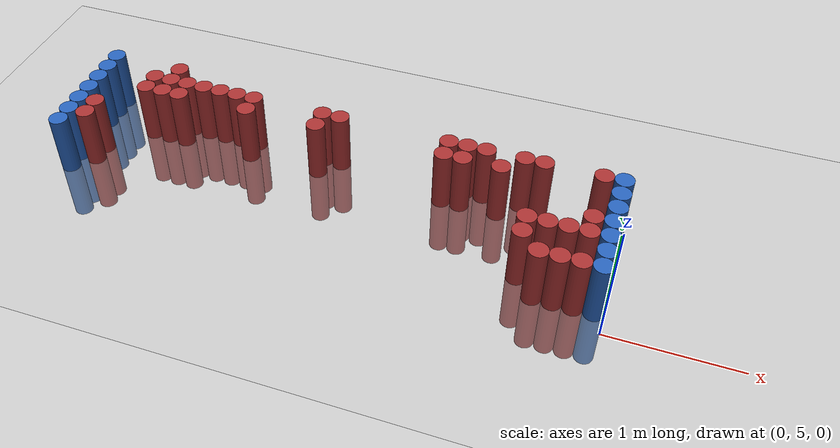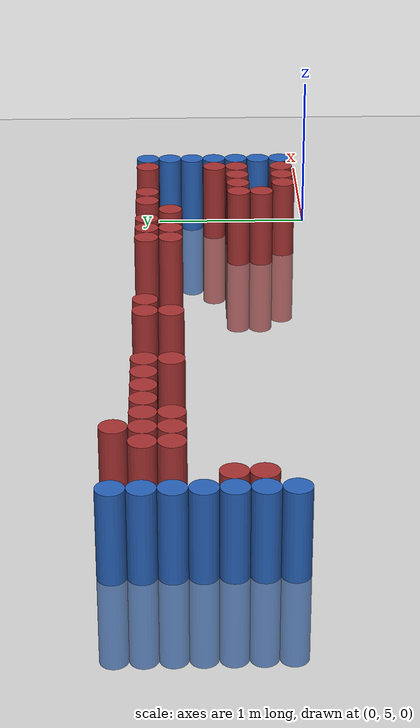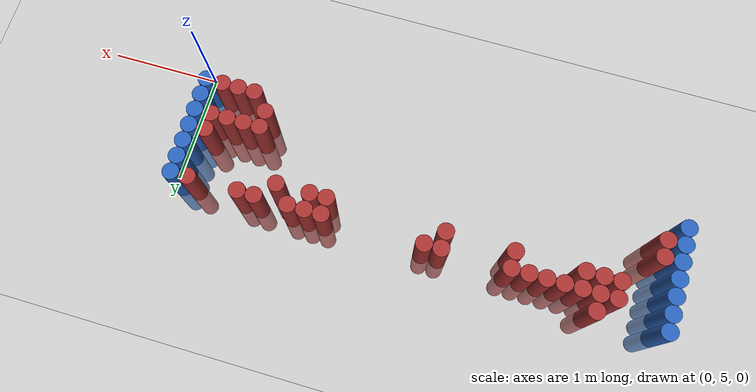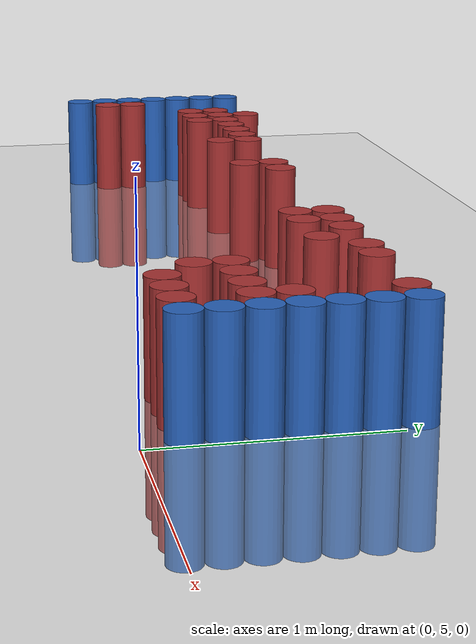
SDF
<sdf version="1.6">
 <world name="default">
  <model name="ground_plane">
   <static>1</static>
   <link name="link">
    <collision name="collision">
     <geometry><plane><normal>0 0 1</normal><size>100 100</size></plane></geometry>
     <surface><friction><ode><mu>100</mu><mu2>50</mu2></ode></friction></surface>
    </collision>
    <visual name="visual">
     <cast_shadows>0</cast_shadows>
     <geometry><plane><normal>0 0 1</normal><size>100 100</size></plane></geometry>
     <material>
      <script><uri>file://media/materials/scripts/gazebo.material</uri><name>Gazebo/Grey</name></script>
     </material>
    </visual>
   </link>
  </model>
  <model name="unit_cylinder_97">
   <static>1</static>
   <pose>-4.425000 5.325000 0.000000 0.000000 0.000000 0.000000</pose>
   <link name="link">
    <inertial>
     <mass>1</mass>
     <inertia><ixx>0.145833</ixx><ixy>0</ixy><ixz>0</ixz><iyy>0.145833</iyy><iyz>0</iyz><izz>0.125</izz></inertia>
    </inertial>
    <collision name="collision">
     <geometry><cylinder><radius>0.075000</radius><length>1</length></cylinder></geometry>
    </collision>
    <visual name="visual">
     <geometry><cylinder><radius>0.075000</radius><length>1</length></cylinder></geometry>
     <material>
      <ambient>0.152000 0.379000 0.720000 1</ambient>
      <diffuse>0.152000 0.379000 0.720000 1</diffuse>
     </material>
     <material>
      <script><name>Gazebo/Grey</name><uri>file://media/materials/scripts/gazebo.material</uri></script>
     </material>
    </visual>
   </link>
  </model>
  <model name="unit_cylinder_98">
   <static>1</static>
   <pose>-4.425000 5.475000 0.000000 0.000000 0.000000 0.000000</pose>
   <link name="link">
    <inertial>
     <mass>1</mass>
     <inertia><ixx>0.145833</ixx><ixy>0</ixy><ixz>0</ixz><iyy>0.145833</iyy><iyz>0</iyz><izz>0.125</izz></inertia>
    </inertial>
    <collision name="collision">
     <geometry><cylinder><radius>0.075000</radius><length>1</length></cylinder></geometry>
    </collision>
    <visual name="visual">
     <geometry><cylinder><radius>0.075000</radius><length>1</length></cylinder></geometry>
     <material>
      <ambient>0.152000 0.379000 0.720000 1</ambient>
      <diffuse>0.152000 0.379000 0.720000 1</diffuse>
     </material>
     <material>
      <script><name>Gazebo/Grey</name><uri>file://media/materials/scripts/gazebo.material</uri></script>
     </material>
    </visual>
   </link>
  </model>
  <model name="unit_cylinder_99">
   <static>1</static>
   <pose>-4.425000 5.625000 0.000000 0.000000 0.000000 0.000000</pose>
   <link name="link">
    <inertial>
     <mass>1</mass>
     <inertia><ixx>0.145833</ixx><ixy>0</ixy><ixz>0</ixz><iyy>0.145833</iyy><iyz>0</iyz><izz>0.125</izz></inertia>
    </inertial>
    <collision name="collision">
     <geometry><cylinder><radius>0.075000</radius><length>1</length></cylinder></geometry>
    </collision>
    <visual name="visual">
     <geometry><cylinder><radius>0.075000</radius><length>1</length></cylinder></geometry>
     <material>
      <ambient>0.152000 0.379000 0.720000 1</ambient>
      <diffuse>0.152000 0.379000 0.720000 1</diffuse>
     </material>
     <material>
      <script><name>Gazebo/Grey</name><uri>file://media/materials/scripts/gazebo.material</uri></script>
     </material>
    </visual>
   </link>
  </model>
  <model name="unit_cylinder_100">
   <static>1</static>
   <pose>-4.425000 5.775000 0.000000 0.000000 0.000000 0.000000</pose>
   <link name="link">
    <inertial>
     <mass>1</mass>
     <inertia><ixx>0.145833</ixx><ixy>0</ixy><ixz>0</ixz><iyy>0.145833</iyy><iyz>0</iyz><izz>0.125</izz></inertia>
    </inertial>
    <collision name="collision">
     <geometry><cylinder><radius>0.075000</radius><length>1</length></cylinder></geometry>
    </collision>
    <visual name="visual">
     <geometry><cylinder><radius>0.075000</radius><length>1</length></cylinder></geometry>
     <material>
      <ambient>0.152000 0.379000 0.720000 1</ambient>
      <diffuse>0.152000 0.379000 0.720000 1</diffuse>
     </material>
     <material>
      <script><name>Gazebo/Grey</name><uri>file://media/materials/scripts/gazebo.material</uri></script>
     </material>
    </visual>
   </link>
  </model>
  <model name="unit_cylinder_101">
   <static>1</static>
   <pose>-4.425000 5.925000 0.000000 0.000000 0.000000 0.000000</pose>
   <link name="link">
    <inertial>
     <mass>1</mass>
     <inertia><ixx>0.145833</ixx><ixy>0</ixy><ixz>0</ixz><iyy>0.145833</iyy><iyz>0</iyz><izz>0.125</izz></inertia>
    </inertial>
    <collision name="collision">
     <geometry><cylinder><radius>0.075000</radius><length>1</length></cylinder></geometry>
    </collision>
    <visual name="visual">
     <geometry><cylinder><radius>0.075000</radius><length>1</length></cylinder></geometry>
     <material>
      <ambient>0.152000 0.379000 0.720000 1</ambient>
      <diffuse>0.152000 0.379000 0.720000 1</diffuse>
     </material>
     <material>
      <script><name>Gazebo/Grey</name><uri>file://media/materials/scripts/gazebo.material</uri></script>
     </material>
    </visual>
   </link>
  </model>
  <model name="unit_cylinder_102">
   <static>1</static>
   <pose>-4.425000 6.075000 0.000000 0.000000 0.000000 0.000000</pose>
   <link name="link">
    <inertial>
     <mass>1</mass>
     <inertia><ixx>0.145833</ixx><ixy>0</ixy><ixz>0</ixz><iyy>0.145833</iyy><iyz>0</iyz><izz>0.125</izz></inertia>
    </inertial>
    <collision name="collision">
     <geometry><cylinder><radius>0.075000</radius><length>1</length></cylinder></geometry>
    </collision>
    <visual name="visual">
     <geometry><cylinder><radius>0.075000</radius><length>1</length></cylinder></geometry>
     <material>
      <ambient>0.152000 0.379000 0.720000 1</ambient>
      <diffuse>0.152000 0.379000 0.720000 1</diffuse>
     </material>
     <material>
      <script><name>Gazebo/Grey</name><uri>file://media/materials/scripts/gazebo.material</uri></script>
     </material>
    </visual>
   </link>
  </model>
  <model name="unit_cylinder_103">
   <static>1</static>
   <pose>-4.425000 6.225000 0.000000 0.000000 0.000000 0.000000</pose>
   <link name="link">
    <inertial>
     <mass>1</mass>
     <inertia><ixx>0.145833</ixx><ixy>0</ixy><ixz>0</ixz><iyy>0.145833</iyy><iyz>0</iyz><izz>0.125</izz></inertia>
    </inertial>
    <collision name="collision">
     <geometry><cylinder><radius>0.075000</radius><length>1</length></cylinder></geometry>
    </collision>
    <visual name="visual">
     <geometry><cylinder><radius>0.075000</radius><length>1</length></cylinder></geometry>
     <material>
      <ambient>0.152000 0.379000 0.720000 1</ambient>
      <diffuse>0.152000 0.379000 0.720000 1</diffuse>
     </material>
     <material>
      <script><name>Gazebo/Grey</name><uri>file://media/materials/scripts/gazebo.material</uri></script>
     </material>
    </visual>
   </link>
  </model>
  <model name="unit_cylinder_126">
   <static>1</static>
   <pose>-4.275000 5.475000 0.000000 0.000000 0.000000 0.000000</pose>
   <link name="link">
    <inertial>
     <mass>1</mass>
     <inertia><ixx>0.145833</ixx><ixy>0</ixy><ixz>0</ixz><iyy>0.145833</iyy><iyz>0</iyz><izz>0.125</izz></inertia>
    </inertial>
    <collision name="collision">
     <geometry><cylinder><radius>0.075000</radius><length>1</length></cylinder></geometry>
    </collision>
    <visual name="visual">
     <geometry><cylinder><radius>0.075000</radius><length>1</length></cylinder></geometry>
     <material>
      <ambient>0.648000 0.192000 0.192000 1</ambient>
      <diffuse>0.648000 0.192000 0.192000 1</diffuse>
     </material>
     <material>
      <script><name>Gazebo/Grey</name><uri>file://media/materials/scripts/gazebo.material</uri></script>
     </material>
    </visual>
   </link>
  </model>
  <model name="unit_cylinder_127">
   <static>1</static>
   <pose>-4.275000 5.625000 0.000000 0.000000 0.000000 0.000000</pose>
   <link name="link">
    <inertial>
     <mass>1</mass>
     <inertia><ixx>0.145833</ixx><ixy>0</ixy><ixz>0</ixz><iyy>0.145833</iyy><iyz>0</iyz><izz>0.125</izz></inertia>
    </inertial>
    <collision name="collision">
     <geometry><cylinder><radius>0.075000</radius><length>1</length></cylinder></geometry>
    </collision>
    <visual name="visual">
     <geometry><cylinder><radius>0.075000</radius><length>1</length></cylinder></geometry>
     <material>
      <ambient>0.648000 0.192000 0.192000 1</ambient>
      <diffuse>0.648000 0.192000 0.192000 1</diffuse>
     </material>
     <material>
      <script><name>Gazebo/Grey</name><uri>file://media/materials/scripts/gazebo.material</uri></script>
     </material>
    </visual>
   </link>
  </model>
  <model name="unit_cylinder_141">
   <static>1</static>
   <pose>-3.975000 5.925000 0.000000 0.000000 0.000000 0.000000</pose>
   <link name="link">
    <inertial>
     <mass>1</mass>
     <inertia><ixx>0.145833</ixx><ixy>0</ixy><ixz>0</ixz><iyy>0.145833</iyy><iyz>0</iyz><izz>0.125</izz></inertia>
    </inertial>
    <collision name="collision">
     <geometry><cylinder><radius>0.075000</radius><length>1</length></cylinder></geometry>
    </collision>
    <visual name="visual">
     <geometry><cylinder><radius>0.075000</radius><length>1</length></cylinder></geometry>
     <material>
      <ambient>0.648000 0.192000 0.192000 1</ambient>
      <diffuse>0.648000 0.192000 0.192000 1</diffuse>
     </material>
     <material>
      <script><name>Gazebo/Grey</name><uri>file://media/materials/scripts/gazebo.material</uri></script>
     </material>
    </visual>
   </link>
  </model>
  <model name="unit_cylinder_142">
   <static>1</static>
   <pose>-3.975000 6.075000 0.000000 0.000000 0.000000 0.000000</pose>
   <link name="link">
    <inertial>
     <mass>1</mass>
     <inertia><ixx>0.145833</ixx><ixy>0</ixy><ixz>0</ixz><iyy>0.145833</iyy><iyz>0</iyz><izz>0.125</izz></inertia>
    </inertial>
    <collision name="collision">
     <geometry><cylinder><radius>0.075000</radius><length>1</length></cylinder></geometry>
    </collision>
    <visual name="visual">
     <geometry><cylinder><radius>0.075000</radius><length>1</length></cylinder></geometry>
     <material>
      <ambient>0.648000 0.192000 0.192000 1</ambient>
      <diffuse>0.648000 0.192000 0.192000 1</diffuse>
     </material>
     <material>
      <script><name>Gazebo/Grey</name><uri>file://media/materials/scripts/gazebo.material</uri></script>
     </material>
    </visual>
   </link>
  </model>
  <model name="unit_cylinder_152">
   <static>1</static>
   <pose>-3.825000 5.925000 0.000000 0.000000 0.000000 0.000000</pose>
   <link name="link">
    <inertial>
     <mass>1</mass>
     <inertia><ixx>0.145833</ixx><ixy>0</ixy><ixz>0</ixz><iyy>0.145833</iyy><iyz>0</iyz><izz>0.125</izz></inertia>
    </inertial>
    <collision name="collision">
     <geometry><cylinder><radius>0.075000</radius><length>1</length></cylinder></geometry>
    </collision>
    <visual name="visual">
     <geometry><cylinder><radius>0.075000</radius><length>1</length></cylinder></geometry>
     <material>
      <ambient>0.648000 0.192000 0.192000 1</ambient>
      <diffuse>0.648000 0.192000 0.192000 1</diffuse>
     </material>
     <material>
      <script><name>Gazebo/Grey</name><uri>file://media/materials/scripts/gazebo.material</uri></script>
     </material>
    </visual>
   </link>
  </model>
  <model name="unit_cylinder_153">
   <static>1</static>
   <pose>-3.825000 6.075000 0.000000 0.000000 0.000000 0.000000</pose>
   <link name="link">
    <inertial>
     <mass>1</mass>
     <inertia><ixx>0.145833</ixx><ixy>0</ixy><ixz>0</ixz><iyy>0.145833</iyy><iyz>0</iyz><izz>0.125</izz></inertia>
    </inertial>
    <collision name="collision">
     <geometry><cylinder><radius>0.075000</radius><length>1</length></cylinder></geometry>
    </collision>
    <visual name="visual">
     <geometry><cylinder><radius>0.075000</radius><length>1</length></cylinder></geometry>
     <material>
      <ambient>0.648000 0.192000 0.192000 1</ambient>
      <diffuse>0.648000 0.192000 0.192000 1</diffuse>
     </material>
     <material>
      <script><name>Gazebo/Grey</name><uri>file://media/materials/scripts/gazebo.material</uri></script>
     </material>
    </visual>
   </link>
  </model>
  <model name="unit_cylinder_154">
   <static>1</static>
   <pose>-3.825000 6.225000 0.000000 0.000000 0.000000 0.000000</pose>
   <link name="link">
    <inertial>
     <mass>1</mass>
     <inertia><ixx>0.145833</ixx><ixy>0</ixy><ixz>0</ixz><iyy>0.145833</iyy><iyz>0</iyz><izz>0.125</izz></inertia>
    </inertial>
    <collision name="collision">
     <geometry><cylinder><radius>0.075000</radius><length>1</length></cylinder></geometry>
    </collision>
    <visual name="visual">
     <geometry><cylinder><radius>0.075000</radius><length>1</length></cylinder></geometry>
     <material>
      <ambient>0.648000 0.192000 0.192000 1</ambient>
      <diffuse>0.648000 0.192000 0.192000 1</diffuse>
     </material>
     <material>
      <script><name>Gazebo/Grey</name><uri>file://media/materials/scripts/gazebo.material</uri></script>
     </material>
    </visual>
   </link>
  </model>
  <model name="unit_cylinder_165">
   <static>1</static>
   <pose>-3.675000 5.925000 0.000000 0.000000 0.000000 0.000000</pose>
   <link name="link">
    <inertial>
     <mass>1</mass>
     <inertia><ixx>0.145833</ixx><ixy>0</ixy><ixz>0</ixz><iyy>0.145833</iyy><iyz>0</iyz><izz>0.125</izz></inertia>
    </inertial>
    <collision name="collision">
     <geometry><cylinder><radius>0.075000</radius><length>1</length></cylinder></geometry>
    </collision>
    <visual name="visual">
     <geometry><cylinder><radius>0.075000</radius><length>1</length></cylinder></geometry>
     <material>
      <ambient>0.648000 0.192000 0.192000 1</ambient>
      <diffuse>0.648000 0.192000 0.192000 1</diffuse>
     </material>
     <material>
      <script><name>Gazebo/Grey</name><uri>file://media/materials/scripts/gazebo.material</uri></script>
     </material>
    </visual>
   </link>
  </model>
  <model name="unit_cylinder_166">
   <static>1</static>
   <pose>-3.675000 6.075000 0.000000 0.000000 0.000000 0.000000</pose>
   <link name="link">
    <inertial>
     <mass>1</mass>
     <inertia><ixx>0.145833</ixx><ixy>0</ixy><ixz>0</ixz><iyy>0.145833</iyy><iyz>0</iyz><izz>0.125</izz></inertia>
    </inertial>
    <collision name="collision">
     <geometry><cylinder><radius>0.075000</radius><length>1</length></cylinder></geometry>
    </collision>
    <visual name="visual">
     <geometry><cylinder><radius>0.075000</radius><length>1</length></cylinder></geometry>
     <material>
      <ambient>0.648000 0.192000 0.192000 1</ambient>
      <diffuse>0.648000 0.192000 0.192000 1</diffuse>
     </material>
     <material>
      <script><name>Gazebo/Grey</name><uri>file://media/materials/scripts/gazebo.material</uri></script>
     </material>
    </visual>
   </link>
  </model>
  <model name="unit_cylinder_173">
   <static>1</static>
   <pose>-3.525000 6.075000 0.000000 0.000000 0.000000 0.000000</pose>
   <link name="link">
    <inertial>
     <mass>1</mass>
     <inertia><ixx>0.145833</ixx><ixy>0</ixy><ixz>0</ixz><iyy>0.145833</iyy><iyz>0</iyz><izz>0.125</izz></inertia>
    </inertial>
    <collision name="collision">
     <geometry><cylinder><radius>0.075000</radius><length>1</length></cylinder></geometry>
    </collision>
    <visual name="visual">
     <geometry><cylinder><radius>0.075000</radius><length>1</length></cylinder></geometry>
     <material>
      <ambient>0.648000 0.192000 0.192000 1</ambient>
      <diffuse>0.648000 0.192000 0.192000 1</diffuse>
     </material>
     <material>
      <script><name>Gazebo/Grey</name><uri>file://media/materials/scripts/gazebo.material</uri></script>
     </material>
    </visual>
   </link>
  </model>
  <model name="unit_cylinder_178">
   <static>1</static>
   <pose>-3.375000 6.075000 0.000000 0.000000 0.000000 0.000000</pose>
   <link name="link">
    <inertial>
     <mass>1</mass>
     <inertia><ixx>0.145833</ixx><ixy>0</ixy><ixz>0</ixz><iyy>0.145833</iyy><iyz>0</iyz><izz>0.125</izz></inertia>
    </inertial>
    <collision name="collision">
     <geometry><cylinder><radius>0.075000</radius><length>1</length></cylinder></geometry>
    </collision>
    <visual name="visual">
     <geometry><cylinder><radius>0.075000</radius><length>1</length></cylinder></geometry>
     <material>
      <ambient>0.648000 0.192000 0.192000 1</ambient>
      <diffuse>0.648000 0.192000 0.192000 1</diffuse>
     </material>
     <material>
      <script><name>Gazebo/Grey</name><uri>file://media/materials/scripts/gazebo.material</uri></script>
     </material>
    </visual>
   </link>
  </model>
  <model name="unit_cylinder_183">
   <static>1</static>
   <pose>-3.225000 6.075000 0.000000 0.000000 0.000000 0.000000</pose>
   <link name="link">
    <inertial>
     <mass>1</mass>
     <inertia><ixx>0.145833</ixx><ixy>0</ixy><ixz>0</ixz><iyy>0.145833</iyy><iyz>0</iyz><izz>0.125</izz></inertia>
    </inertial>
    <collision name="collision">
     <geometry><cylinder><radius>0.075000</radius><length>1</length></cylinder></geometry>
    </collision>
    <visual name="visual">
     <geometry><cylinder><radius>0.075000</radius><length>1</length></cylinder></geometry>
     <material>
      <ambient>0.648000 0.192000 0.192000 1</ambient>
      <diffuse>0.648000 0.192000 0.192000 1</diffuse>
     </material>
     <material>
      <script><name>Gazebo/Grey</name><uri>file://media/materials/scripts/gazebo.material</uri></script>
     </material>
    </visual>
   </link>
  </model>
  <model name="unit_cylinder_186">
   <static>1</static>
   <pose>-3.075000 5.925000 0.000000 0.000000 0.000000 0.000000</pose>
   <link name="link">
    <inertial>
     <mass>1</mass>
     <inertia><ixx>0.145833</ixx><ixy>0</ixy><ixz>0</ixz><iyy>0.145833</iyy><iyz>0</iyz><izz>0.125</izz></inertia>
    </inertial>
    <collision name="collision">
     <geometry><cylinder><radius>0.075000</radius><length>1</length></cylinder></geometry>
    </collision>
    <visual name="visual">
     <geometry><cylinder><radius>0.075000</radius><length>1</length></cylinder></geometry>
     <material>
      <ambient>0.648000 0.192000 0.192000 1</ambient>
      <diffuse>0.648000 0.192000 0.192000 1</diffuse>
     </material>
     <material>
      <script><name>Gazebo/Grey</name><uri>file://media/materials/scripts/gazebo.material</uri></script>
     </material>
    </visual>
   </link>
  </model>
  <model name="unit_cylinder_187">
   <static>1</static>
   <pose>-3.075000 6.075000 0.000000 0.000000 0.000000 0.000000</pose>
   <link name="link">
    <inertial>
     <mass>1</mass>
     <inertia><ixx>0.145833</ixx><ixy>0</ixy><ixz>0</ixz><iyy>0.145833</iyy><iyz>0</iyz><izz>0.125</izz></inertia>
    </inertial>
    <collision name="collision">
     <geometry><cylinder><radius>0.075000</radius><length>1</length></cylinder></geometry>
    </collision>
    <visual name="visual">
     <geometry><cylinder><radius>0.075000</radius><length>1</length></cylinder></geometry>
     <material>
      <ambient>0.648000 0.192000 0.192000 1</ambient>
      <diffuse>0.648000 0.192000 0.192000 1</diffuse>
     </material>
     <material>
      <script><name>Gazebo/Grey</name><uri>file://media/materials/scripts/gazebo.material</uri></script>
     </material>
    </visual>
   </link>
  </model>
  <model name="unit_cylinder_213">
   <static>1</static>
   <pose>-2.475000 5.925000 0.000000 0.000000 0.000000 0.000000</pose>
   <link name="link">
    <inertial>
     <mass>1</mass>
     <inertia><ixx>0.145833</ixx><ixy>0</ixy><ixz>0</ixz><iyy>0.145833</iyy><iyz>0</iyz><izz>0.125</izz></inertia>
    </inertial>
    <collision name="collision">
     <geometry><cylinder><radius>0.075000</radius><length>1</length></cylinder></geometry>
    </collision>
    <visual name="visual">
     <geometry><cylinder><radius>0.075000</radius><length>1</length></cylinder></geometry>
     <material>
      <ambient>0.648000 0.192000 0.192000 1</ambient>
      <diffuse>0.648000 0.192000 0.192000 1</diffuse>
     </material>
     <material>
      <script><name>Gazebo/Grey</name><uri>file://media/materials/scripts/gazebo.material</uri></script>
     </material>
    </visual>
   </link>
  </model>
  <model name="unit_cylinder_214">
   <static>1</static>
   <pose>-2.475000 6.075000 0.000000 0.000000 0.000000 0.000000</pose>
   <link name="link">
    <inertial>
     <mass>1</mass>
     <inertia><ixx>0.145833</ixx><ixy>0</ixy><ixz>0</ixz><iyy>0.145833</iyy><iyz>0</iyz><izz>0.125</izz></inertia>
    </inertial>
    <collision name="collision">
     <geometry><cylinder><radius>0.075000</radius><length>1</length></cylinder></geometry>
    </collision>
    <visual name="visual">
     <geometry><cylinder><radius>0.075000</radius><length>1</length></cylinder></geometry>
     <material>
      <ambient>0.648000 0.192000 0.192000 1</ambient>
      <diffuse>0.648000 0.192000 0.192000 1</diffuse>
     </material>
     <material>
      <script><name>Gazebo/Grey</name><uri>file://media/materials/scripts/gazebo.material</uri></script>
     </material>
    </visual>
   </link>
  </model>
  <model name="unit_cylinder_216">
   <static>1</static>
   <pose>-2.325000 6.075000 0.000000 0.000000 0.000000 0.000000</pose>
   <link name="link">
    <inertial>
     <mass>1</mass>
     <inertia><ixx>0.145833</ixx><ixy>0</ixy><ixz>0</ixz><iyy>0.145833</iyy><iyz>0</iyz><izz>0.125</izz></inertia>
    </inertial>
    <collision name="collision">
     <geometry><cylinder><radius>0.075000</radius><length>1</length></cylinder></geometry>
    </collision>
    <visual name="visual">
     <geometry><cylinder><radius>0.075000</radius><length>1</length></cylinder></geometry>
     <material>
      <ambient>0.648000 0.192000 0.192000 1</ambient>
      <diffuse>0.648000 0.192000 0.192000 1</diffuse>
     </material>
     <material>
      <script><name>Gazebo/Grey</name><uri>file://media/materials/scripts/gazebo.material</uri></script>
     </material>
    </visual>
   </link>
  </model>
  <model name="unit_cylinder_229">
   <static>1</static>
   <pose>-1.425000 5.925000 0.000000 0.000000 0.000000 0.000000</pose>
   <link name="link">
    <inertial>
     <mass>1</mass>
     <inertia><ixx>0.145833</ixx><ixy>0</ixy><ixz>0</ixz><iyy>0.145833</iyy><iyz>0</iyz><izz>0.125</izz></inertia>
    </inertial>
    <collision name="collision">
     <geometry><cylinder><radius>0.075000</radius><length>1</length></cylinder></geometry>
    </collision>
    <visual name="visual">
     <geometry><cylinder><radius>0.075000</radius><length>1</length></cylinder></geometry>
     <material>
      <ambient>0.648000 0.192000 0.192000 1</ambient>
      <diffuse>0.648000 0.192000 0.192000 1</diffuse>
     </material>
     <material>
      <script><name>Gazebo/Grey</name><uri>file://media/materials/scripts/gazebo.material</uri></script>
     </material>
    </visual>
   </link>
  </model>
  <model name="unit_cylinder_230">
   <static>1</static>
   <pose>-1.425000 6.075000 0.000000 0.000000 0.000000 0.000000</pose>
   <link name="link">
    <inertial>
     <mass>1</mass>
     <inertia><ixx>0.145833</ixx><ixy>0</ixy><ixz>0</ixz><iyy>0.145833</iyy><iyz>0</iyz><izz>0.125</izz></inertia>
    </inertial>
    <collision name="collision">
     <geometry><cylinder><radius>0.075000</radius><length>1</length></cylinder></geometry>
    </collision>
    <visual name="visual">
     <geometry><cylinder><radius>0.075000</radius><length>1</length></cylinder></geometry>
     <material>
      <ambient>0.648000 0.192000 0.192000 1</ambient>
      <diffuse>0.648000 0.192000 0.192000 1</diffuse>
     </material>
     <material>
      <script><name>Gazebo/Grey</name><uri>file://media/materials/scripts/gazebo.material</uri></script>
     </material>
    </visual>
   </link>
  </model>
  <model name="unit_cylinder_237">
   <static>1</static>
   <pose>-1.275000 5.925000 0.000000 0.000000 0.000000 0.000000</pose>
   <link name="link">
    <inertial>
     <mass>1</mass>
     <inertia><ixx>0.145833</ixx><ixy>0</ixy><ixz>0</ixz><iyy>0.145833</iyy><iyz>0</iyz><izz>0.125</izz></inertia>
    </inertial>
    <collision name="collision">
     <geometry><cylinder><radius>0.075000</radius><length>1</length></cylinder></geometry>
    </collision>
    <visual name="visual">
     <geometry><cylinder><radius>0.075000</radius><length>1</length></cylinder></geometry>
     <material>
      <ambient>0.648000 0.192000 0.192000 1</ambient>
      <diffuse>0.648000 0.192000 0.192000 1</diffuse>
     </material>
     <material>
      <script><name>Gazebo/Grey</name><uri>file://media/materials/scripts/gazebo.material</uri></script>
     </material>
    </visual>
   </link>
  </model>
  <model name="unit_cylinder_238">
   <static>1</static>
   <pose>-1.275000 6.075000 0.000000 0.000000 0.000000 0.000000</pose>
   <link name="link">
    <inertial>
     <mass>1</mass>
     <inertia><ixx>0.145833</ixx><ixy>0</ixy><ixz>0</ixz><iyy>0.145833</iyy><iyz>0</iyz><izz>0.125</izz></inertia>
    </inertial>
    <collision name="collision">
     <geometry><cylinder><radius>0.075000</radius><length>1</length></cylinder></geometry>
    </collision>
    <visual name="visual">
     <geometry><cylinder><radius>0.075000</radius><length>1</length></cylinder></geometry>
     <material>
      <ambient>0.648000 0.192000 0.192000 1</ambient>
      <diffuse>0.648000 0.192000 0.192000 1</diffuse>
     </material>
     <material>
      <script><name>Gazebo/Grey</name><uri>file://media/materials/scripts/gazebo.material</uri></script>
     </material>
    </visual>
   </link>
  </model>
  <model name="unit_cylinder_246">
   <static>1</static>
   <pose>-1.125000 6.075000 0.000000 0.000000 0.000000 0.000000</pose>
   <link name="link">
    <inertial>
     <mass>1</mass>
     <inertia><ixx>0.145833</ixx><ixy>0</ixy><ixz>0</ixz><iyy>0.145833</iyy><iyz>0</iyz><izz>0.125</izz></inertia>
    </inertial>
    <collision name="collision">
     <geometry><cylinder><radius>0.075000</radius><length>1</length></cylinder></geometry>
    </collision>
    <visual name="visual">
     <geometry><cylinder><radius>0.075000</radius><length>1</length></cylinder></geometry>
     <material>
      <ambient>0.648000 0.192000 0.192000 1</ambient>
      <diffuse>0.648000 0.192000 0.192000 1</diffuse>
     </material>
     <material>
      <script><name>Gazebo/Grey</name><uri>file://media/materials/scripts/gazebo.material</uri></script>
     </material>
    </visual>
   </link>
  </model>
  <model name="unit_cylinder_252">
   <static>1</static>
   <pose>-0.975000 5.925000 0.000000 0.000000 0.000000 0.000000</pose>
   <link name="link">
    <inertial>
     <mass>1</mass>
     <inertia><ixx>0.145833</ixx><ixy>0</ixy><ixz>0</ixz><iyy>0.145833</iyy><iyz>0</iyz><izz>0.125</izz></inertia>
    </inertial>
    <collision name="collision">
     <geometry><cylinder><radius>0.075000</radius><length>1</length></cylinder></geometry>
    </collision>
    <visual name="visual">
     <geometry><cylinder><radius>0.075000</radius><length>1</length></cylinder></geometry>
     <material>
      <ambient>0.648000 0.192000 0.192000 1</ambient>
      <diffuse>0.648000 0.192000 0.192000 1</diffuse>
     </material>
     <material>
      <script><name>Gazebo/Grey</name><uri>file://media/materials/scripts/gazebo.material</uri></script>
     </material>
    </visual>
   </link>
  </model>
  <model name="unit_cylinder_260">
   <static>1</static>
   <pose>-0.825000 6.075000 0.000000 0.000000 0.000000 0.000000</pose>
   <link name="link">
    <inertial>
     <mass>1</mass>
     <inertia><ixx>0.145833</ixx><ixy>0</ixy><ixz>0</ixz><iyy>0.145833</iyy><iyz>0</iyz><izz>0.125</izz></inertia>
    </inertial>
    <collision name="collision">
     <geometry><cylinder><radius>0.075000</radius><length>1</length></cylinder></geometry>
    </collision>
    <visual name="visual">
     <geometry><cylinder><radius>0.075000</radius><length>1</length></cylinder></geometry>
     <material>
      <ambient>0.648000 0.192000 0.192000 1</ambient>
      <diffuse>0.648000 0.192000 0.192000 1</diffuse>
     </material>
     <material>
      <script><name>Gazebo/Grey</name><uri>file://media/materials/scripts/gazebo.material</uri></script>
     </material>
    </visual>
   </link>
  </model>
  <model name="unit_cylinder_272">
   <static>1</static>
   <pose>-0.675000 5.325000 0.000000 0.000000 0.000000 0.000000</pose>
   <link name="link">
    <inertial>
     <mass>1</mass>
     <inertia><ixx>0.145833</ixx><ixy>0</ixy><ixz>0</ixz><iyy>0.145833</iyy><iyz>0</iyz><izz>0.125</izz></inertia>
    </inertial>
    <collision name="collision">
     <geometry><cylinder><radius>0.075000</radius><length>1</length></cylinder></geometry>
    </collision>
    <visual name="visual">
     <geometry><cylinder><radius>0.075000</radius><length>1</length></cylinder></geometry>
     <material>
      <ambient>0.648000 0.192000 0.192000 1</ambient>
      <diffuse>0.648000 0.192000 0.192000 1</diffuse>
     </material>
     <material>
      <script><name>Gazebo/Grey</name><uri>file://media/materials/scripts/gazebo.material</uri></script>
     </material>
    </visual>
   </link>
  </model>
  <model name="unit_cylinder_273">
   <static>1</static>
   <pose>-0.675000 5.475000 0.000000 0.000000 0.000000 0.000000</pose>
   <link name="link">
    <inertial>
     <mass>1</mass>
     <inertia><ixx>0.145833</ixx><ixy>0</ixy><ixz>0</ixz><iyy>0.145833</iyy><iyz>0</iyz><izz>0.125</izz></inertia>
    </inertial>
    <collision name="collision">
     <geometry><cylinder><radius>0.075000</radius><length>1</length></cylinder></geometry>
    </collision>
    <visual name="visual">
     <geometry><cylinder><radius>0.075000</radius><length>1</length></cylinder></geometry>
     <material>
      <ambient>0.648000 0.192000 0.192000 1</ambient>
      <diffuse>0.648000 0.192000 0.192000 1</diffuse>
     </material>
     <material>
      <script><name>Gazebo/Grey</name><uri>file://media/materials/scripts/gazebo.material</uri></script>
     </material>
    </visual>
   </link>
  </model>
  <model name="unit_cylinder_274">
   <static>1</static>
   <pose>-0.675000 6.075000 0.000000 0.000000 0.000000 0.000000</pose>
   <link name="link">
    <inertial>
     <mass>1</mass>
     <inertia><ixx>0.145833</ixx><ixy>0</ixy><ixz>0</ixz><iyy>0.145833</iyy><iyz>0</iyz><izz>0.125</izz></inertia>
    </inertial>
    <collision name="collision">
     <geometry><cylinder><radius>0.075000</radius><length>1</length></cylinder></geometry>
    </collision>
    <visual name="visual">
     <geometry><cylinder><radius>0.075000</radius><length>1</length></cylinder></geometry>
     <material>
      <ambient>0.648000 0.192000 0.192000 1</ambient>
      <diffuse>0.648000 0.192000 0.192000 1</diffuse>
     </material>
     <material>
      <script><name>Gazebo/Grey</name><uri>file://media/materials/scripts/gazebo.material</uri></script>
     </material>
    </visual>
   </link>
  </model>
  <model name="unit_cylinder_288">
   <static>1</static>
   <pose>-0.525000 5.175000 0.000000 0.000000 0.000000 0.000000</pose>
   <link name="link">
    <inertial>
     <mass>1</mass>
     <inertia><ixx>0.145833</ixx><ixy>0</ixy><ixz>0</ixz><iyy>0.145833</iyy><iyz>0</iyz><izz>0.125</izz></inertia>
    </inertial>
    <collision name="collision">
     <geometry><cylinder><radius>0.075000</radius><length>1</length></cylinder></geometry>
    </collision>
    <visual name="visual">
     <geometry><cylinder><radius>0.075000</radius><length>1</length></cylinder></geometry>
     <material>
      <ambient>0.648000 0.192000 0.192000 1</ambient>
      <diffuse>0.648000 0.192000 0.192000 1</diffuse>
     </material>
     <material>
      <script><name>Gazebo/Grey</name><uri>file://media/materials/scripts/gazebo.material</uri></script>
     </material>
    </visual>
   </link>
  </model>
  <model name="unit_cylinder_289">
   <static>1</static>
   <pose>-0.525000 5.475000 0.000000 0.000000 0.000000 0.000000</pose>
   <link name="link">
    <inertial>
     <mass>1</mass>
     <inertia><ixx>0.145833</ixx><ixy>0</ixy><ixz>0</ixz><iyy>0.145833</iyy><iyz>0</iyz><izz>0.125</izz></inertia>
    </inertial>
    <collision name="collision">
     <geometry><cylinder><radius>0.075000</radius><length>1</length></cylinder></geometry>
    </collision>
    <visual name="visual">
     <geometry><cylinder><radius>0.075000</radius><length>1</length></cylinder></geometry>
     <material>
      <ambient>0.648000 0.192000 0.192000 1</ambient>
      <diffuse>0.648000 0.192000 0.192000 1</diffuse>
     </material>
     <material>
      <script><name>Gazebo/Grey</name><uri>file://media/materials/scripts/gazebo.material</uri></script>
     </material>
    </visual>
   </link>
  </model>
  <model name="unit_cylinder_296">
   <static>1</static>
   <pose>-0.375000 5.175000 0.000000 0.000000 0.000000 0.000000</pose>
   <link name="link">
    <inertial>
     <mass>1</mass>
     <inertia><ixx>0.145833</ixx><ixy>0</ixy><ixz>0</ixz><iyy>0.145833</iyy><iyz>0</iyz><izz>0.125</izz></inertia>
    </inertial>
    <collision name="collision">
     <geometry><cylinder><radius>0.075000</radius><length>1</length></cylinder></geometry>
    </collision>
    <visual name="visual">
     <geometry><cylinder><radius>0.075000</radius><length>1</length></cylinder></geometry>
     <material>
      <ambient>0.648000 0.192000 0.192000 1</ambient>
      <diffuse>0.648000 0.192000 0.192000 1</diffuse>
     </material>
     <material>
      <script><name>Gazebo/Grey</name><uri>file://media/materials/scripts/gazebo.material</uri></script>
     </material>
    </visual>
   </link>
  </model>
  <model name="unit_cylinder_297">
   <static>1</static>
   <pose>-0.375000 5.475000 0.000000 0.000000 0.000000 0.000000</pose>
   <link name="link">
    <inertial>
     <mass>1</mass>
     <inertia><ixx>0.145833</ixx><ixy>0</ixy><ixz>0</ixz><iyy>0.145833</iyy><iyz>0</iyz><izz>0.125</izz></inertia>
    </inertial>
    <collision name="collision">
     <geometry><cylinder><radius>0.075000</radius><length>1</length></cylinder></geometry>
    </collision>
    <visual name="visual">
     <geometry><cylinder><radius>0.075000</radius><length>1</length></cylinder></geometry>
     <material>
      <ambient>0.648000 0.192000 0.192000 1</ambient>
      <diffuse>0.648000 0.192000 0.192000 1</diffuse>
     </material>
     <material>
      <script><name>Gazebo/Grey</name><uri>file://media/materials/scripts/gazebo.material</uri></script>
     </material>
    </visual>
   </link>
  </model>
  <model name="unit_cylinder_304">
   <static>1</static>
   <pose>-0.225000 5.175000 0.000000 0.000000 0.000000 0.000000</pose>
   <link name="link">
    <inertial>
     <mass>1</mass>
     <inertia><ixx>0.145833</ixx><ixy>0</ixy><ixz>0</ixz><iyy>0.145833</iyy><iyz>0</iyz><izz>0.125</izz></inertia>
    </inertial>
    <collision name="collision">
     <geometry><cylinder><radius>0.075000</radius><length>1</length></cylinder></geometry>
    </collision>
    <visual name="visual">
     <geometry><cylinder><radius>0.075000</radius><length>1</length></cylinder></geometry>
     <material>
      <ambient>0.648000 0.192000 0.192000 1</ambient>
      <diffuse>0.648000 0.192000 0.192000 1</diffuse>
     </material>
     <material>
      <script><name>Gazebo/Grey</name><uri>file://media/materials/scripts/gazebo.material</uri></script>
     </material>
    </visual>
   </link>
  </model>
  <model name="unit_cylinder_305">
   <static>1</static>
   <pose>-0.225000 5.475000 0.000000 0.000000 0.000000 0.000000</pose>
   <link name="link">
    <inertial>
     <mass>1</mass>
     <inertia><ixx>0.145833</ixx><ixy>0</ixy><ixz>0</ixz><iyy>0.145833</iyy><iyz>0</iyz><izz>0.125</izz></inertia>
    </inertial>
    <collision name="collision">
     <geometry><cylinder><radius>0.075000</radius><length>1</length></cylinder></geometry>
    </collision>
    <visual name="visual">
     <geometry><cylinder><radius>0.075000</radius><length>1</length></cylinder></geometry>
     <material>
      <ambient>0.648000 0.192000 0.192000 1</ambient>
      <diffuse>0.648000 0.192000 0.192000 1</diffuse>
     </material>
     <material>
      <script><name>Gazebo/Grey</name><uri>file://media/materials/scripts/gazebo.material</uri></script>
     </material>
    </visual>
   </link>
  </model>
  <model name="unit_cylinder_306">
   <static>1</static>
   <pose>-0.225000 5.625000 0.000000 0.000000 0.000000 0.000000</pose>
   <link name="link">
    <inertial>
     <mass>1</mass>
     <inertia><ixx>0.145833</ixx><ixy>0</ixy><ixz>0</ixz><iyy>0.145833</iyy><iyz>0</iyz><izz>0.125</izz></inertia>
    </inertial>
    <collision name="collision">
     <geometry><cylinder><radius>0.075000</radius><length>1</length></cylinder></geometry>
    </collision>
    <visual name="visual">
     <geometry><cylinder><radius>0.075000</radius><length>1</length></cylinder></geometry>
     <material>
      <ambient>0.648000 0.192000 0.192000 1</ambient>
      <diffuse>0.648000 0.192000 0.192000 1</diffuse>
     </material>
     <material>
      <script><name>Gazebo/Grey</name><uri>file://media/materials/scripts/gazebo.material</uri></script>
     </material>
    </visual>
   </link>
  </model>
  <model name="unit_cylinder_307">
   <static>1</static>
   <pose>-0.225000 6.075000 0.000000 0.000000 0.000000 0.000000</pose>
   <link name="link">
    <inertial>
     <mass>1</mass>
     <inertia><ixx>0.145833</ixx><ixy>0</ixy><ixz>0</ixz><iyy>0.145833</iyy><iyz>0</iyz><izz>0.125</izz></inertia>
    </inertial>
    <collision name="collision">
     <geometry><cylinder><radius>0.075000</radius><length>1</length></cylinder></geometry>
    </collision>
    <visual name="visual">
     <geometry><cylinder><radius>0.075000</radius><length>1</length></cylinder></geometry>
     <material>
      <ambient>0.648000 0.192000 0.192000 1</ambient>
      <diffuse>0.648000 0.192000 0.192000 1</diffuse>
     </material>
     <material>
      <script><name>Gazebo/Grey</name><uri>file://media/materials/scripts/gazebo.material</uri></script>
     </material>
    </visual>
   </link>
  </model>
  <model name="unit_cylinder_314">
   <static>1</static>
   <pose>-0.075000 5.175000 0.000000 0.000000 0.000000 0.000000</pose>
   <link name="link">
    <inertial>
     <mass>1</mass>
     <inertia><ixx>0.145833</ixx><ixy>0</ixy><ixz>0</ixz><iyy>0.145833</iyy><iyz>0</iyz><izz>0.125</izz></inertia>
    </inertial>
    <collision name="collision">
     <geometry><cylinder><radius>0.075000</radius><length>1</length></cylinder></geometry>
    </collision>
    <visual name="visual">
     <geometry><cylinder><radius>0.075000</radius><length>1</length></cylinder></geometry>
     <material>
      <ambient>0.152000 0.379000 0.720000 1</ambient>
      <diffuse>0.152000 0.379000 0.720000 1</diffuse>
     </material>
     <material>
      <script><name>Gazebo/Grey</name><uri>file://media/materials/scripts/gazebo.material</uri></script>
     </material>
    </visual>
   </link>
  </model>
  <model name="unit_cylinder_315">
   <static>1</static>
   <pose>-0.075000 5.325000 0.000000 0.000000 0.000000 0.000000</pose>
   <link name="link">
    <inertial>
     <mass>1</mass>
     <inertia><ixx>0.145833</ixx><ixy>0</ixy><ixz>0</ixz><iyy>0.145833</iyy><iyz>0</iyz><izz>0.125</izz></inertia>
    </inertial>
    <collision name="collision">
     <geometry><cylinder><radius>0.075000</radius><length>1</length></cylinder></geometry>
    </collision>
    <visual name="visual">
     <geometry><cylinder><radius>0.075000</radius><length>1</length></cylinder></geometry>
     <material>
      <ambient>0.152000 0.379000 0.720000 1</ambient>
      <diffuse>0.152000 0.379000 0.720000 1</diffuse>
     </material>
     <material>
      <script><name>Gazebo/Grey</name><uri>file://media/materials/scripts/gazebo.material</uri></script>
     </material>
    </visual>
   </link>
  </model>
  <model name="unit_cylinder_316">
   <static>1</static>
   <pose>-0.075000 5.475000 0.000000 0.000000 0.000000 0.000000</pose>
   <link name="link">
    <inertial>
     <mass>1</mass>
     <inertia><ixx>0.145833</ixx><ixy>0</ixy><ixz>0</ixz><iyy>0.145833</iyy><iyz>0</iyz><izz>0.125</izz></inertia>
    </inertial>
    <collision name="collision">
     <geometry><cylinder><radius>0.075000</radius><length>1</length></cylinder></geometry>
    </collision>
    <visual name="visual">
     <geometry><cylinder><radius>0.075000</radius><length>1</length></cylinder></geometry>
     <material>
      <ambient>0.152000 0.379000 0.720000 1</ambient>
      <diffuse>0.152000 0.379000 0.720000 1</diffuse>
     </material>
     <material>
      <script><name>Gazebo/Grey</name><uri>file://media/materials/scripts/gazebo.material</uri></script>
     </material>
    </visual>
   </link>
  </model>
  <model name="unit_cylinder_317">
   <static>1</static>
   <pose>-0.075000 5.625000 0.000000 0.000000 0.000000 0.000000</pose>
   <link name="link">
    <inertial>
     <mass>1</mass>
     <inertia><ixx>0.145833</ixx><ixy>0</ixy><ixz>0</ixz><iyy>0.145833</iyy><iyz>0</iyz><izz>0.125</izz></inertia>
    </inertial>
    <collision name="collision">
     <geometry><cylinder><radius>0.075000</radius><length>1</length></cylinder></geometry>
    </collision>
    <visual name="visual">
     <geometry><cylinder><radius>0.075000</radius><length>1</length></cylinder></geometry>
     <material>
      <ambient>0.152000 0.379000 0.720000 1</ambient>
      <diffuse>0.152000 0.379000 0.720000 1</diffuse>
     </material>
     <material>
      <script><name>Gazebo/Grey</name><uri>file://media/materials/scripts/gazebo.material</uri></script>
     </material>
    </visual>
   </link>
  </model>
  <model name="unit_cylinder_318">
   <static>1</static>
   <pose>-0.075000 5.775000 0.000000 0.000000 0.000000 0.000000</pose>
   <link name="link">
    <inertial>
     <mass>1</mass>
     <inertia><ixx>0.145833</ixx><ixy>0</ixy><ixz>0</ixz><iyy>0.145833</iyy><iyz>0</iyz><izz>0.125</izz></inertia>
    </inertial>
    <collision name="collision">
     <geometry><cylinder><radius>0.075000</radius><length>1</length></cylinder></geometry>
    </collision>
    <visual name="visual">
     <geometry><cylinder><radius>0.075000</radius><length>1</length></cylinder></geometry>
     <material>
      <ambient>0.152000 0.379000 0.720000 1</ambient>
      <diffuse>0.152000 0.379000 0.720000 1</diffuse>
     </material>
     <material>
      <script><name>Gazebo/Grey</name><uri>file://media/materials/scripts/gazebo.material</uri></script>
     </material>
    </visual>
   </link>
  </model>
  <model name="unit_cylinder_319">
   <static>1</static>
   <pose>-0.075000 5.925000 0.000000 0.000000 0.000000 0.000000</pose>
   <link name="link">
    <inertial>
     <mass>1</mass>
     <inertia><ixx>0.145833</ixx><ixy>0</ixy><ixz>0</ixz><iyy>0.145833</iyy><iyz>0</iyz><izz>0.125</izz></inertia>
    </inertial>
    <collision name="collision">
     <geometry><cylinder><radius>0.075000</radius><length>1</length></cylinder></geometry>
    </collision>
    <visual name="visual">
     <geometry><cylinder><radius>0.075000</radius><length>1</length></cylinder></geometry>
     <material>
      <ambient>0.152000 0.379000 0.720000 1</ambient>
      <diffuse>0.152000 0.379000 0.720000 1</diffuse>
     </material>
     <material>
      <script><name>Gazebo/Grey</name><uri>file://media/materials/scripts/gazebo.material</uri></script>
     </material>
    </visual>
   </link>
  </model>
  <model name="unit_cylinder_320">
   <static>1</static>
   <pose>-0.075000 6.075000 0.000000 0.000000 0.000000 0.000000</pose>
   <link name="link">
    <inertial>
     <mass>1</mass>
     <inertia><ixx>0.145833</ixx><ixy>0</ixy><ixz>0</ixz><iyy>0.145833</iyy><iyz>0</iyz><izz>0.125</izz></inertia>
    </inertial>
    <collision name="collision">
     <geometry><cylinder><radius>0.075000</radius><length>1</length></cylinder></geometry>
    </collision>
    <visual name="visual">
     <geometry><cylinder><radius>0.075000</radius><length>1</length></cylinder></geometry>
     <material>
      <ambient>0.152000 0.379000 0.720000 1</ambient>
      <diffuse>0.152000 0.379000 0.720000 1</diffuse>
     </material>
     <material>
      <script><name>Gazebo/Grey</name><uri>file://media/materials/scripts/gazebo.material</uri></script>
     </material>
    </visual>
   </link>
  </model>
 </world>
</sdf>
